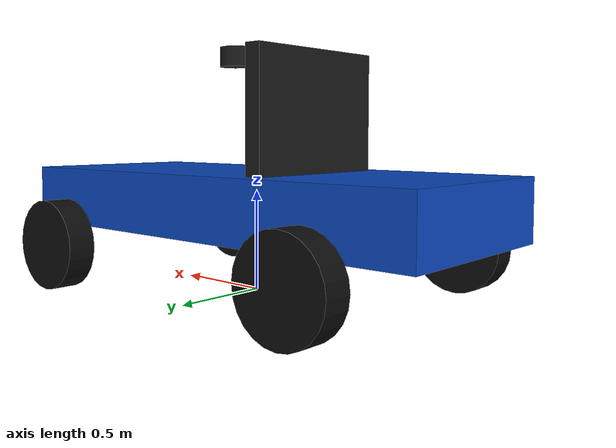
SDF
<?xml version="1.0"?>
<sdf version="1.9">
  <model name="racecar">
    <!--
      G8 uses the kinematic bicycle relation at the axle centre and lets
      AckermannSteering split the equivalent steering angle between the two
      physical front wheels.
    -->
    <static>false</static>
    <self_collide>false</self_collide>

    <link name="base_link">
      <pose>0 0 0.45 0 0 0</pose>
      <inertial>
        <mass>180.0</mass>
        <inertia>
          <ixx>16.35</ixx>
          <iyy>87.75</iyy>
          <izz>101.40</izz>
        </inertia>
      </inertial>

      <collision name="body_collision">
        <geometry>
          <box>
            <size>2.40 1.00 0.30</size>
          </box>
        </geometry>
      </collision>

      <visual name="body_visual">
        <geometry>
          <box>
            <size>2.40 1.00 0.30</size>
          </box>
        </geometry>
        <material>
          <ambient>0.03 0.12 0.28 1</ambient>
          <diffuse>0.04 0.28 0.75 1</diffuse>
          <specular>0.30 0.30 0.30 1</specular>
        </material>
      </visual>

      <visual name="nose_visual">
        <pose>1.38 0 -0.04 0 0 0</pose>
        <geometry>
          <box>
            <size>0.40 0.50 0.20</size>
          </box>
        </geometry>
        <material>
          <ambient>0.04 0.22 0.68 1</ambient>
          <diffuse>0.04 0.22 0.68 1</diffuse>
        </material>
      </visual>

      <visual name="roll_hoop_visual">
        <pose>-0.35 0 0.38 0 0 0</pose>
        <geometry>
          <box>
            <size>0.08 0.82 0.70</size>
          </box>
        </geometry>
        <material>
          <ambient>0.05 0.05 0.05 1</ambient>
          <diffuse>0.10 0.10 0.10 1</diffuse>
        </material>
      </visual>
    </link>

    <link name="front_left_wheel">
      <pose>0.775 0.67 0.225 0 0 0</pose>
      <inertial>
        <mass>4.0</mass>
        <inertia>
          <ixx>0.057</ixx>
          <iyy>0.101</iyy>
          <izz>0.057</izz>
        </inertia>
      </inertial>
      <collision name="collision">
        <pose>0 0 0 1.570796 0 0</pose>
        <geometry>
          <cylinder>
            <radius>0.225</radius>
            <length>0.14</length>
          </cylinder>
        </geometry>
      </collision>
      <visual name="visual">
        <pose>0 0 0 1.570796 0 0</pose>
        <geometry>
          <cylinder>
            <radius>0.225</radius>
            <length>0.14</length>
          </cylinder>
        </geometry>
        <material>
          <ambient>0.03 0.03 0.03 1</ambient>
          <diffuse>0.05 0.05 0.05 1</diffuse>
        </material>
      </visual>
    </link>

    <link name="front_right_wheel">
      <pose>0.775 -0.67 0.225 0 0 0</pose>
      <inertial>
        <mass>4.0</mass>
        <inertia>
          <ixx>0.057</ixx>
          <iyy>0.101</iyy>
          <izz>0.057</izz>
        </inertia>
      </inertial>
      <collision name="collision">
        <pose>0 0 0 1.570796 0 0</pose>
        <geometry>
          <cylinder>
            <radius>0.225</radius>
            <length>0.14</length>
          </cylinder>
        </geometry>
      </collision>
      <visual name="visual">
        <pose>0 0 0 1.570796 0 0</pose>
        <geometry>
          <cylinder>
            <radius>0.225</radius>
            <length>0.14</length>
          </cylinder>
        </geometry>
        <material>
          <ambient>0.03 0.03 0.03 1</ambient>
          <diffuse>0.05 0.05 0.05 1</diffuse>
        </material>
      </visual>
    </link>

    <link name="rear_left_wheel">
      <pose>-0.775 0.67 0.225 0 0 0</pose>
      <inertial>
        <mass>4.0</mass>
        <inertia>
          <ixx>0.057</ixx>
          <iyy>0.101</iyy>
          <izz>0.057</izz>
        </inertia>
      </inertial>
      <collision name="collision">
        <pose>0 0 0 1.570796 0 0</pose>
        <geometry>
          <cylinder>
            <radius>0.225</radius>
            <length>0.14</length>
          </cylinder>
        </geometry>
      </collision>
      <visual name="visual">
        <pose>0 0 0 1.570796 0 0</pose>
        <geometry>
          <cylinder>
            <radius>0.225</radius>
            <length>0.14</length>
          </cylinder>
        </geometry>
        <material>
          <ambient>0.03 0.03 0.03 1</ambient>
          <diffuse>0.05 0.05 0.05 1</diffuse>
        </material>
      </visual>
    </link>

    <link name="rear_right_wheel">
      <pose>-0.775 -0.67 0.225 0 0 0</pose>
      <inertial>
        <mass>4.0</mass>
        <inertia>
          <ixx>0.057</ixx>
          <iyy>0.101</iyy>
          <izz>0.057</izz>
        </inertia>
      </inertial>
      <collision name="collision">
        <pose>0 0 0 1.570796 0 0</pose>
        <geometry>
          <cylinder>
            <radius>0.225</radius>
            <length>0.14</length>
          </cylinder>
        </geometry>
      </collision>
      <visual name="visual">
        <pose>0 0 0 1.570796 0 0</pose>
        <geometry>
          <cylinder>
            <radius>0.225</radius>
            <length>0.14</length>
          </cylinder>
        </geometry>
        <material>
          <ambient>0.03 0.03 0.03 1</ambient>
          <diffuse>0.05 0.05 0.05 1</diffuse>
        </material>
      </visual>
    </link>

    <!-- Steering knuckles are 1.20 m apart; wheel centres are 1.34 m apart. -->
    <link name="front_left_steering_link">
      <pose>0.775 0.60 0.225 0 0 0</pose>
      <inertial>
        <mass>0.5</mass>
        <inertia>
          <ixx>0.002</ixx>
          <iyy>0.002</iyy>
          <izz>0.002</izz>
        </inertia>
      </inertial>
    </link>

    <link name="front_right_steering_link">
      <pose>0.775 -0.60 0.225 0 0 0</pose>
      <inertial>
        <mass>0.5</mass>
        <inertia>
          <ixx>0.002</ixx>
          <iyy>0.002</iyy>
          <izz>0.002</izz>
        </inertia>
      </inertial>
    </link>

    <link name="lidar_link">
      <pose>0.15 0 1.18 0 0 0</pose>
      <inertial>
        <mass>1.0</mass>
        <inertia>
          <ixx>0.0024</ixx>
          <iyy>0.0024</iyy>
          <izz>0.0032</izz>
        </inertia>
      </inertial>
      <collision name="collision">
        <geometry>
          <cylinder>
            <radius>0.08</radius>
            <length>0.10</length>
          </cylinder>
        </geometry>
      </collision>
      <visual name="visual">
        <geometry>
          <cylinder>
            <radius>0.08</radius>
            <length>0.10</length>
          </cylinder>
        </geometry>
        <material>
          <ambient>0.04 0.04 0.04 1</ambient>
          <diffuse>0.10 0.10 0.10 1</diffuse>
        </material>
      </visual>

      <sensor name="top_lidar" type="gpu_lidar">
        <topic>/lidar</topic>
        <gz_frame_id>lidar_link</gz_frame_id>
        <update_rate>10</update_rate>
        <always_on>true</always_on>
        <visualize>true</visualize>

        <lidar>
          <scan>
            <horizontal>
              <samples>720</samples>
              <resolution>1</resolution>
              <min_angle>-3.14159265</min_angle>
              <max_angle>3.14159265</max_angle>
            </horizontal>
            <vertical>
              <samples>128</samples>
              <resolution>1</resolution>
              <min_angle>-0.436332</min_angle>
              <max_angle>0.261799</max_angle>
            </vertical>
          </scan>
          <range>
            <min>0.3</min>
            <max>50.0</max>
            <resolution>0.02</resolution>
          </range>
        </lidar>
      </sensor>
    </link>

    <joint name="front_left_steering_joint" type="revolute">
      <parent>base_link</parent>
      <child>front_left_steering_link</child>
      <axis>
        <xyz>0 0 1</xyz>
        <limit>
          <lower>-0.60</lower>
          <upper>0.60</upper>
          <effort>500</effort>
          <velocity>3.0</velocity>
        </limit>
        <dynamics>
          <damping>0.5</damping>
          <friction>0.1</friction>
        </dynamics>
      </axis>
    </joint>

    <joint name="front_right_steering_joint" type="revolute">
      <parent>base_link</parent>
      <child>front_right_steering_link</child>
      <axis>
        <xyz>0 0 1</xyz>
        <limit>
          <lower>-0.60</lower>
          <upper>0.60</upper>
          <effort>500</effort>
          <velocity>3.0</velocity>
        </limit>
        <dynamics>
          <damping>0.5</damping>
          <friction>0.1</friction>
        </dynamics>
      </axis>
    </joint>

    <joint name="front_left_wheel_joint" type="revolute">
      <parent>front_left_steering_link</parent>
      <child>front_left_wheel</child>
      <axis>
        <xyz>0 1 0</xyz>
        <limit>
          <lower>-1.79769e+308</lower>
          <upper>1.79769e+308</upper>
          <effort>2000</effort>
          <velocity>100</velocity>
        </limit>
        <dynamics>
          <damping>0.05</damping>
        </dynamics>
      </axis>
    </joint>

    <joint name="front_right_wheel_joint" type="revolute">
      <parent>front_right_steering_link</parent>
      <child>front_right_wheel</child>
      <axis>
        <xyz>0 1 0</xyz>
        <limit>
          <lower>-1.79769e+308</lower>
          <upper>1.79769e+308</upper>
          <effort>2000</effort>
          <velocity>100</velocity>
        </limit>
        <dynamics>
          <damping>0.05</damping>
        </dynamics>
      </axis>
    </joint>

    <joint name="rear_left_wheel_joint" type="revolute">
      <parent>base_link</parent>
      <child>rear_left_wheel</child>
      <axis>
        <xyz>0 1 0</xyz>
        <limit>
          <lower>-1.79769e+308</lower>
          <upper>1.79769e+308</upper>
          <effort>2000</effort>
          <velocity>100</velocity>
        </limit>
        <dynamics>
          <damping>0.05</damping>
        </dynamics>
      </axis>
    </joint>

    <joint name="rear_right_wheel_joint" type="revolute">
      <parent>base_link</parent>
      <child>rear_right_wheel</child>
      <axis>
        <xyz>0 1 0</xyz>
        <limit>
          <lower>-1.79769e+308</lower>
          <upper>1.79769e+308</upper>
          <effort>2000</effort>
          <velocity>100</velocity>
        </limit>
        <dynamics>
          <damping>0.05</damping>
        </dynamics>
      </axis>
    </joint>

    <joint name="lidar_fixed_joint" type="fixed">
      <parent>base_link</parent>
      <child>lidar_link</child>
    </joint>

    <plugin
      filename="gz-sim-ackermann-steering-system"
      name="gz::sim::systems::AckermannSteering">
      <left_joint>front_left_wheel_joint</left_joint>
      <left_joint>rear_left_wheel_joint</left_joint>
      <right_joint>front_right_wheel_joint</right_joint>
      <right_joint>rear_right_wheel_joint</right_joint>
      <left_steering_joint>front_left_steering_joint</left_steering_joint>
      <right_steering_joint>front_right_steering_joint</right_steering_joint>
      <wheel_base>1.55</wheel_base>
      <wheel_separation>1.34</wheel_separation>
      <kingpin_width>1.20</kingpin_width>
      <wheel_radius>0.225</wheel_radius>
      <steering_limit>0.55</steering_limit>
      <steer_p_gain>5.0</steer_p_gain>
      <min_velocity>-5.0</min_velocity>
      <max_velocity>5.0</max_velocity>
      <min_acceleration>-2.0</min_acceleration>
      <max_acceleration>2.0</max_acceleration>
      <min_jerk>-10.0</min_jerk>
      <max_jerk>10.0</max_jerk>
      <topic>/model/racecar/cmd_vel</topic>
      <odom_topic>/model/racecar/odometry</odom_topic>
      <tf_topic>/model/racecar/tf</tf_topic>
      <frame_id>odom</frame_id>
      <child_frame_id>base_link</child_frame_id>
      <odom_publish_frequency>50</odom_publish_frequency>
    </plugin>

    <plugin
      filename="gz-sim-joint-state-publisher-system"
      name="gz::sim::systems::JointStatePublisher">
      <topic>/model/racecar/joint_states</topic>
      <joint_name>front_left_steering_joint</joint_name>
      <joint_name>front_right_steering_joint</joint_name>
      <joint_name>front_left_wheel_joint</joint_name>
      <joint_name>front_right_wheel_joint</joint_name>
      <joint_name>rear_left_wheel_joint</joint_name>
      <joint_name>rear_right_wheel_joint</joint_name>
    </plugin>
  </model>
</sdf>
